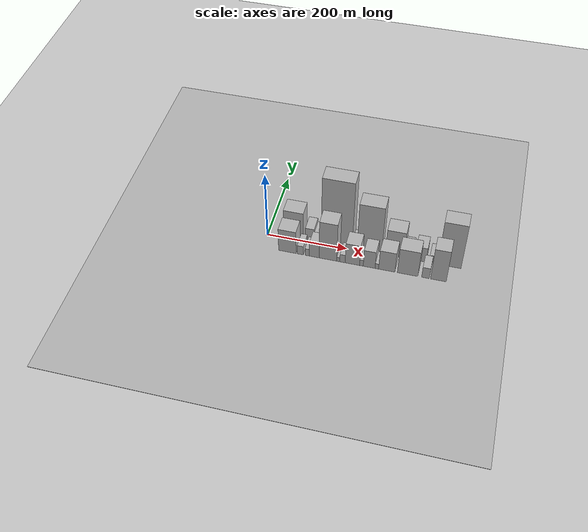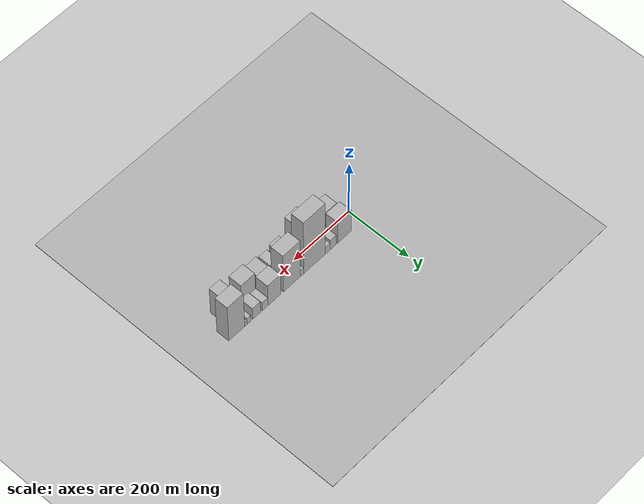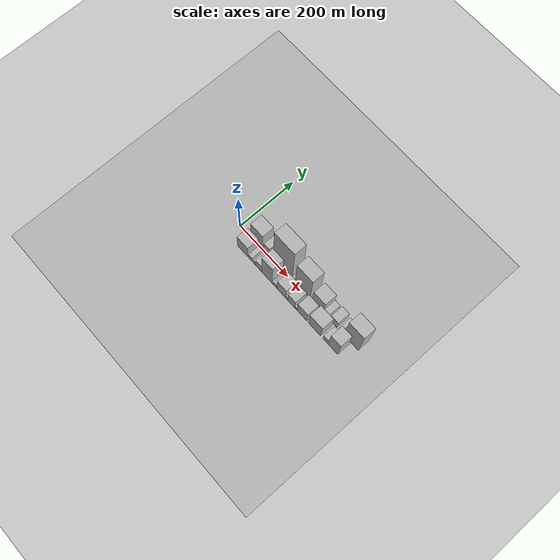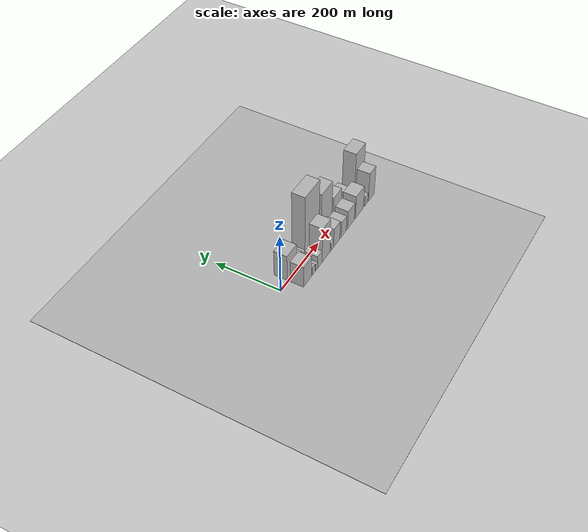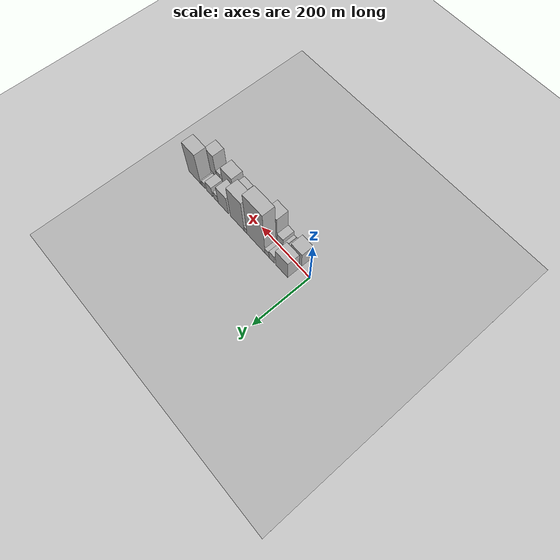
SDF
<?xml version="1.0" encoding="utf-8"?>

<sdf version="1.6">

   <world name="default">

      <gui fullscreen="0">

         <camera name="user_camera">

            <pose>-15 0 4.57585 0 0 0</pose>

            <view_controller>orbit</view_controller>

         </camera>

      </gui>

      <scene>

         <sky>

           <clouds>

             <speed>12</speed>

           </clouds>

         </sky>

         <ambient>0.4 0.4 0.4 1</ambient>

         <background>0.7 0.7 0.7 1</background>

         <shadows>1</shadows>

      </scene>

      <gravity>0 0 -9.8066</gravity>

      <magnetic_field>6e-06 2.3e-05 -4.2e-05</magnetic_field>

      <physics default="0" name="default_physics" type="ode">

         <ode>

            <solver>

               <type>quick</type>

               <iters>10</iters>

               <sor>1.0</sor>

               <use_dynamic_moi_rescaling>0</use_dynamic_moi_rescaling>

            </solver>

            <constraints>

               <cfm>0</cfm>

               <erp>0.2</erp>

               <contact_max_correcting_vel>100</contact_max_correcting_vel>

               <contact_surface_layer>0.001</contact_surface_layer>

            </constraints>

         </ode>

         <max_step_size>0.004</max_step_size>

         <real_time_factor>1</real_time_factor>

         <real_time_update_rate>250</real_time_update_rate>

      </physics>

      <light name="sun" type="directional">

         <cast_shadows>1</cast_shadows>

         <pose>0 0 10 0 0 0</pose>

         <diffuse>0.8 0.8 0.8 1</diffuse>

         <specular>0.2 0.2 0.2 1</specular>

         <attenuation>

            <range>1000</range>

            <constant>0.9</constant>

            <linear>0.01</linear>

            <quadratic>0.001</quadratic>

         </attenuation>

         <direction>-0.5 0.1 -0.9</direction>

      </light>

      <include>

         <name>ground_plane_1</name>

         <uri>model://HANNAS_ground_plane</uri>

         <pose>0 0 0  0 0 0</pose>

      </include>

      <include>

         <name>ground_plane_2</name>

         <uri>model://HANNAS_ground_plane</uri>

         <pose>100 0 0  0 0 0</pose>

      </include>

      <model name="building_1">

         <static>1</static>

         <pose frame="">64.7713 24.5000 0 0.000000 0.000000 1.570796</pose>

         <link name="link">

            <pose frame="">0 0 45.00 0 0 0</pose>

            <collision name="collision">

               <geometry>

                  <box>

                     <size>40.0000 49.5426 90.0000</size>

                  </box>

               </geometry>

               <max_contacts>10</max_contacts>

               <surface>

                  <contact>

                     <ode/>

                  </contact>

                  <bounce/>

                  <friction>

                     <torsional>

                        <ode/>

                     </torsional>

                     <ode/>

                  </friction>

               </surface>

            </collision>

            <visual name="visual">

               <cast_shadows>0</cast_shadows>

               <geometry>

                  <box>

                     <size>40.0000 49.5426 90.0000</size>

                  </box>

               </geometry>

               <material>

                  <script>

                     <uri>model://HANNAS_wall/materials/scripts</uri>

                     <uri>model://HANNAS_wall/materials/textures</uri>

                     <name>vrc/HANNAS_wall</name>

                  </script>

               </material>

            </visual>

            <self_collide>0</self_collide>

            <enable_wind>0</enable_wind>

            <kinematic>0</kinematic>

         </link>

      </model>

      <model name="building_2">

         <static>1</static>

         <pose frame="">105.6642 24.5000 0 0.000000 0.000000 1.570796</pose>

         <link name="link">

            <pose frame="">0 0 21.00 0 0 0</pose>

            <collision name="collision">

               <geometry>

                  <box>

                     <size>40.0000 22.2433 42.0000</size>

                  </box>

               </geometry>

               <max_contacts>10</max_contacts>

               <surface>

                  <contact>

                     <ode/>

                  </contact>

                  <bounce/>

                  <friction>

                     <torsional>

                        <ode/>

                     </torsional>

                     <ode/>

                  </friction>

               </surface>

            </collision>

            <visual name="visual">

               <cast_shadows>0</cast_shadows>

               <geometry>

                  <box>

                     <size>40.0000 22.2433 42.0000</size>

                  </box>

               </geometry>

               <material>

                  <script>

                     <uri>model://HANNAS_wall/materials/scripts</uri>

                     <uri>model://HANNAS_wall/materials/textures</uri>

                     <name>vrc/HANNAS_wall</name>

                  </script>

               </material>

            </visual>

            <self_collide>0</self_collide>

            <enable_wind>0</enable_wind>

            <kinematic>0</kinematic>

         </link>

      </model>

      <model name="building_3">

         <static>1</static>

         <pose frame="">125.5210 24.5000 0 0.000000 0.000000 1.570796</pose>

         <link name="link">

            <pose frame="">0 0 15.00 0 0 0</pose>

            <collision name="collision">

               <geometry>

                  <box>

                     <size>40.0000 17.4704 30.0000</size>

                  </box>

               </geometry>

               <max_contacts>10</max_contacts>

               <surface>

                  <contact>

                     <ode/>

                  </contact>

                  <bounce/>

                  <friction>

                     <torsional>

                        <ode/>

                     </torsional>

                     <ode/>

                  </friction>

               </surface>

            </collision>

            <visual name="visual">

               <cast_shadows>0</cast_shadows>

               <geometry>

                  <box>

                     <size>40.0000 17.4704 30.0000</size>

                  </box>

               </geometry>

               <material>

                  <script>

                     <uri>model://HANNAS_wall/materials/scripts</uri>

                     <uri>model://HANNAS_wall/materials/textures</uri>

                     <name>vrc/HANNAS_wall</name>

                  </script>

               </material>

            </visual>

            <self_collide>0</self_collide>

            <enable_wind>0</enable_wind>

            <kinematic>0</kinematic>

         </link>

      </model>

      <model name="building_4">

         <static>1</static>

         <pose frame="">173.0121 24.5000 0 0.000000 0.000000 1.570796</pose>

         <link name="link">

            <pose frame="">0 0 109.50 0 0 0</pose>

            <collision name="collision">

               <geometry>

                  <box>

                     <size>40.0000 77.5117 219.0000</size>

                  </box>

               </geometry>

               <max_contacts>10</max_contacts>

               <surface>

                  <contact>

                     <ode/>

                  </contact>

                  <bounce/>

                  <friction>

                     <torsional>

                        <ode/>

                     </torsional>

                     <ode/>

                  </friction>

               </surface>

            </collision>

            <visual name="visual">

               <cast_shadows>0</cast_shadows>

               <geometry>

                  <box>

                     <size>40.0000 77.5117 219.0000</size>

                  </box>

               </geometry>

               <material>

                  <script>

                     <uri>model://HANNAS_wall/materials/scripts</uri>

                     <uri>model://HANNAS_wall/materials/textures</uri>

                     <name>vrc/HANNAS_wall</name>

                  </script>

               </material>

            </visual>

            <self_collide>0</self_collide>

            <enable_wind>0</enable_wind>

            <kinematic>0</kinematic>

         </link>

      </model>

      <model name="building_5">

         <static>1</static>

         <pose frame="">217.7400 24.5000 0 0.000000 0.000000 1.570796</pose>

         <link name="link">

            <pose frame="">0 0 13.50 0 0 0</pose>

            <collision name="collision">

               <geometry>

                  <box>

                     <size>40.0000 11.9441 27.0000</size>

                  </box>

               </geometry>

               <max_contacts>10</max_contacts>

               <surface>

                  <contact>

                     <ode/>

                  </contact>

                  <bounce/>

                  <friction>

                     <torsional>

                        <ode/>

                     </torsional>

                     <ode/>

                  </friction>

               </surface>

            </collision>

            <visual name="visual">

               <cast_shadows>0</cast_shadows>

               <geometry>

                  <box>

                     <size>40.0000 11.9441 27.0000</size>

                  </box>

               </geometry>

               <material>

                  <script>

                     <uri>model://HANNAS_wall/materials/scripts</uri>

                     <uri>model://HANNAS_wall/materials/textures</uri>

                     <name>vrc/HANNAS_wall</name>

                  </script>

               </material>

            </visual>

            <self_collide>0</self_collide>

            <enable_wind>0</enable_wind>

            <kinematic>0</kinematic>

         </link>

      </model>

      <model name="building_6">

         <static>1</static>

         <pose frame="">254.0440 24.5000 0 0.000000 0.000000 1.570796</pose>

         <link name="link">

            <pose frame="">0 0 78.00 0 0 0</pose>

            <collision name="collision">

               <geometry>

                  <box>

                     <size>40.0000 60.6638 156.0000</size>

                  </box>

               </geometry>

               <max_contacts>10</max_contacts>

               <surface>

                  <contact>

                     <ode/>

                  </contact>

                  <bounce/>

                  <friction>

                     <torsional>

                        <ode/>

                     </torsional>

                     <ode/>

                  </friction>

               </surface>

            </collision>

            <visual name="visual">

               <cast_shadows>0</cast_shadows>

               <geometry>

                  <box>

                     <size>40.0000 60.6638 156.0000</size>

                  </box>

               </geometry>

               <material>

                  <script>

                     <uri>model://HANNAS_wall/materials/scripts</uri>

                     <uri>model://HANNAS_wall/materials/textures</uri>

                     <name>vrc/HANNAS_wall</name>

                  </script>

               </material>

            </visual>

            <self_collide>0</self_collide>

            <enable_wind>0</enable_wind>

            <kinematic>0</kinematic>

         </link>

      </model>

      <model name="building_7">

         <static>1</static>

         <pose frame="">316.2565 24.5000 0 0.000000 0.000000 1.570796</pose>

         <link name="link">

            <pose frame="">0 0 43.50 0 0 0</pose>

            <collision name="collision">

               <geometry>

                  <box>

                     <size>40.0000 45.7612 87.0000</size>

                  </box>

               </geometry>

               <max_contacts>10</max_contacts>

               <surface>

                  <contact>

                     <ode/>

                  </contact>

                  <bounce/>

                  <friction>

                     <torsional>

                        <ode/>

                     </torsional>

                     <ode/>

                  </friction>

               </surface>

            </collision>

            <visual name="visual">

               <cast_shadows>0</cast_shadows>

               <geometry>

                  <box>

                     <size>40.0000 45.7612 87.0000</size>

                  </box>

               </geometry>

               <material>

                  <script>

                     <uri>model://HANNAS_wall/materials/scripts</uri>

                     <uri>model://HANNAS_wall/materials/textures</uri>

                     <name>vrc/HANNAS_wall</name>

                  </script>

               </material>

            </visual>

            <self_collide>0</self_collide>

            <enable_wind>0</enable_wind>

            <kinematic>0</kinematic>

         </link>

      </model>

      <model name="building_8">

         <static>1</static>

         <pose frame="">349.2459 24.5000 0 0.000000 0.000000 1.570796</pose>

         <link name="link">

            <pose frame="">0 0 18.00 0 0 0</pose>

            <collision name="collision">

               <geometry>

                  <box>

                     <size>40.0000 20.2176 36.0000</size>

                  </box>

               </geometry>

               <max_contacts>10</max_contacts>

               <surface>

                  <contact>

                     <ode/>

                  </contact>

                  <bounce/>

                  <friction>

                     <torsional>

                        <ode/>

                     </torsional>

                     <ode/>

                  </friction>

               </surface>

            </collision>

            <visual name="visual">

               <cast_shadows>0</cast_shadows>

               <geometry>

                  <box>

                     <size>40.0000 20.2176 36.0000</size>

                  </box>

               </geometry>

               <material>

                  <script>

                     <uri>model://HANNAS_wall/materials/scripts</uri>

                     <uri>model://HANNAS_wall/materials/textures</uri>

                     <name>vrc/HANNAS_wall</name>

                  </script>

               </material>

            </visual>

            <self_collide>0</self_collide>

            <enable_wind>0</enable_wind>

            <kinematic>0</kinematic>

         </link>

      </model>

      <model name="building_9">

         <static>1</static>

         <pose frame="">379.1778 24.5000 0 0.000000 0.000000 1.570796</pose>

         <link name="link">

            <pose frame="">0 0 24.00 0 0 0</pose>

            <collision name="collision">

               <geometry>

                  <box>

                     <size>40.0000 27.6463 48.0000</size>

                  </box>

               </geometry>

               <max_contacts>10</max_contacts>

               <surface>

                  <contact>

                     <ode/>

                  </contact>

                  <bounce/>

                  <friction>

                     <torsional>

                        <ode/>

                     </torsional>

                     <ode/>

                  </friction>

               </surface>

            </collision>

            <visual name="visual">

               <cast_shadows>0</cast_shadows>

               <geometry>

                  <box>

                     <size>40.0000 27.6463 48.0000</size>

                  </box>

               </geometry>

               <material>

                  <script>

                     <uri>model://HANNAS_wall/materials/scripts</uri>

                     <uri>model://HANNAS_wall/materials/textures</uri>

                     <name>vrc/HANNAS_wall</name>

                  </script>

               </material>

            </visual>

            <self_collide>0</self_collide>

            <enable_wind>0</enable_wind>

            <kinematic>0</kinematic>

         </link>

      </model>

      <model name="building_10">

         <static>1</static>

         <pose frame="">406.3961 24.5000 0 0.000000 0.000000 1.570796</pose>

         <link name="link">

            <pose frame="">0 0 13.50 0 0 0</pose>

            <collision name="collision">

               <geometry>

                  <box>

                     <size>40.0000 12.7904 27.0000</size>

                  </box>

               </geometry>

               <max_contacts>10</max_contacts>

               <surface>

                  <contact>

                     <ode/>

                  </contact>

                  <bounce/>

                  <friction>

                     <torsional>

                        <ode/>

                     </torsional>

                     <ode/>

                  </friction>

               </surface>

            </collision>

            <visual name="visual">

               <cast_shadows>0</cast_shadows>

               <geometry>

                  <box>

                     <size>40.0000 12.7904 27.0000</size>

                  </box>

               </geometry>

               <material>

                  <script>

                     <uri>model://HANNAS_wall/materials/scripts</uri>

                     <uri>model://HANNAS_wall/materials/textures</uri>

                     <name>vrc/HANNAS_wall</name>

                  </script>

               </material>

            </visual>

            <self_collide>0</self_collide>

            <enable_wind>0</enable_wind>

            <kinematic>0</kinematic>

         </link>

      </model>

      <model name="building_11">

         <static>1</static>

         <pose frame="">416.9157 24.5000 0 0.000000 0.000000 1.570796</pose>

         <link name="link">

            <pose frame="">0 0 9.00 0 0 0</pose>

            <collision name="collision">

               <geometry>

                  <box>

                     <size>40.0000 8.2487 18.0000</size>

                  </box>

               </geometry>

               <max_contacts>10</max_contacts>

               <surface>

                  <contact>

                     <ode/>

                  </contact>

                  <bounce/>

                  <friction>

                     <torsional>

                        <ode/>

                     </torsional>

                     <ode/>

                  </friction>

               </surface>

            </collision>

            <visual name="visual">

               <cast_shadows>0</cast_shadows>

               <geometry>

                  <box>

                     <size>40.0000 8.2487 18.0000</size>

                  </box>

               </geometry>

               <material>

                  <script>

                     <uri>model://HANNAS_wall/materials/scripts</uri>

                     <uri>model://HANNAS_wall/materials/textures</uri>

                     <name>vrc/HANNAS_wall</name>

                  </script>

               </material>

            </visual>

            <self_collide>0</self_collide>

            <enable_wind>0</enable_wind>

            <kinematic>0</kinematic>

         </link>

      </model>

      <model name="building_12">

         <static>1</static>

         <pose frame="">448.8330 24.5000 0 0.000000 0.000000 1.570796</pose>

         <link name="link">

            <pose frame="">0 0 73.50 0 0 0</pose>

            <collision name="collision">

               <geometry>

                  <box>

                     <size>40.0000 55.5858 147.0000</size>

                  </box>

               </geometry>

               <max_contacts>10</max_contacts>

               <surface>

                  <contact>

                     <ode/>

                  </contact>

                  <bounce/>

                  <friction>

                     <torsional>

                        <ode/>

                     </torsional>

                     <ode/>

                  </friction>

               </surface>

            </collision>

            <visual name="visual">

               <cast_shadows>0</cast_shadows>

               <geometry>

                  <box>

                     <size>40.0000 55.5858 147.0000</size>

                  </box>

               </geometry>

               <material>

                  <script>

                     <uri>model://HANNAS_wall/materials/scripts</uri>

                     <uri>model://HANNAS_wall/materials/textures</uri>

                     <name>vrc/HANNAS_wall</name>

                  </script>

               </material>

            </visual>

            <self_collide>0</self_collide>

            <enable_wind>0</enable_wind>

            <kinematic>0</kinematic>

         </link>

      </model>

      <model name="building_13">

         <static>1</static>

         <pose frame="">61.8248 -24.5000 0 0.000000 0.000000 1.570796</pose>

         <link name="link">

            <pose frame="">0 0 37.50 0 0 0</pose>

            <collision name="collision">

               <geometry>

                  <box>

                     <size>40.0000 43.6497 75.0000</size>

                  </box>

               </geometry>

               <max_contacts>10</max_contacts>

               <surface>

                  <contact>

                     <ode/>

                  </contact>

                  <bounce/>

                  <friction>

                     <torsional>

                        <ode/>

                     </torsional>

                     <ode/>

                  </friction>

               </surface>

            </collision>

            <visual name="visual">

               <cast_shadows>0</cast_shadows>

               <geometry>

                  <box>

                     <size>40.0000 43.6497 75.0000</size>

                  </box>

               </geometry>

               <material>

                  <script>

                     <uri>model://HANNAS_wall/materials/scripts</uri>

                     <uri>model://HANNAS_wall/materials/textures</uri>

                     <name>vrc/HANNAS_wall</name>

                  </script>

               </material>

            </visual>

            <self_collide>0</self_collide>

            <enable_wind>0</enable_wind>

            <kinematic>0</kinematic>

         </link>

      </model>

      <model name="building_14">

         <static>1</static>

         <pose frame="">94.2804 -24.5000 0 0.000000 0.000000 1.570796</pose>

         <link name="link">

            <pose frame="">0 0 15.00 0 0 0</pose>

            <collision name="collision">

               <geometry>

                  <box>

                     <size>40.0000 15.2615 30.0000</size>

                  </box>

               </geometry>

               <max_contacts>10</max_contacts>

               <surface>

                  <contact>

                     <ode/>

                  </contact>

                  <bounce/>

                  <friction>

                     <torsional>

                        <ode/>

                     </torsional>

                     <ode/>

                  </friction>

               </surface>

            </collision>

            <visual name="visual">

               <cast_shadows>0</cast_shadows>

               <geometry>

                  <box>

                     <size>40.0000 15.2615 30.0000</size>

                  </box>

               </geometry>

               <material>

                  <script>

                     <uri>model://HANNAS_wall/materials/scripts</uri>

                     <uri>model://HANNAS_wall/materials/textures</uri>

                     <name>vrc/HANNAS_wall</name>

                  </script>

               </material>

            </visual>

            <self_collide>0</self_collide>

            <enable_wind>0</enable_wind>

            <kinematic>0</kinematic>

         </link>

      </model>

      <model name="building_15">

         <static>1</static>

         <pose frame="">110.9795 -24.5000 0 0.000000 0.000000 1.570796</pose>

         <link name="link">

            <pose frame="">0 0 12.00 0 0 0</pose>

            <collision name="collision">

               <geometry>

                  <box>

                     <size>40.0000 10.1367 24.0000</size>

                  </box>

               </geometry>

               <max_contacts>10</max_contacts>

               <surface>

                  <contact>

                     <ode/>

                  </contact>

                  <bounce/>

                  <friction>

                     <torsional>

                        <ode/>

                     </torsional>

                     <ode/>

                  </friction>

               </surface>

            </collision>

            <visual name="visual">

               <cast_shadows>0</cast_shadows>

               <geometry>

                  <box>

                     <size>40.0000 10.1367 24.0000</size>

                  </box>

               </geometry>

               <material>

                  <script>

                     <uri>model://HANNAS_wall/materials/scripts</uri>

                     <uri>model://HANNAS_wall/materials/textures</uri>

                     <name>vrc/HANNAS_wall</name>

                  </script>

               </material>

            </visual>

            <self_collide>0</self_collide>

            <enable_wind>0</enable_wind>

            <kinematic>0</kinematic>

         </link>

      </model>

      <model name="building_16">

         <static>1</static>

         <pose frame="">128.3566 -24.5000 0 0.000000 0.000000 1.570796</pose>

         <link name="link">

            <pose frame="">0 0 22.50 0 0 0</pose>

            <collision name="collision">

               <geometry>

                  <box>

                     <size>40.0000 24.6174 45.0000</size>

                  </box>

               </geometry>

               <max_contacts>10</max_contacts>

               <surface>

                  <contact>

                     <ode/>

                  </contact>

                  <bounce/>

                  <friction>

                     <torsional>

                        <ode/>

                     </torsional>

                     <ode/>

                  </friction>

               </surface>

            </collision>

            <visual name="visual">

               <cast_shadows>0</cast_shadows>

               <geometry>

                  <box>

                     <size>40.0000 24.6174 45.0000</size>

                  </box>

               </geometry>

               <material>

                  <script>

                     <uri>model://HANNAS_wall/materials/scripts</uri>

                     <uri>model://HANNAS_wall/materials/textures</uri>

                     <name>vrc/HANNAS_wall</name>

                  </script>

               </material>

            </visual>

            <self_collide>0</self_collide>

            <enable_wind>0</enable_wind>

            <kinematic>0</kinematic>

         </link>

      </model>

      <model name="building_17">

         <static>1</static>

         <pose frame="">162.4548 -24.5000 0 0.000000 0.000000 1.570796</pose>

         <link name="link">

            <pose frame="">0 0 63.00 0 0 0</pose>

            <collision name="collision">

               <geometry>

                  <box>

                     <size>40.0000 43.5791 126.0000</size>

                  </box>

               </geometry>

               <max_contacts>10</max_contacts>

               <surface>

                  <contact>

                     <ode/>

                  </contact>

                  <bounce/>

                  <friction>

                     <torsional>

                        <ode/>

                     </torsional>

                     <ode/>

                  </friction>

               </surface>

            </collision>

            <visual name="visual">

               <cast_shadows>0</cast_shadows>

               <geometry>

                  <box>

                     <size>40.0000 43.5791 126.0000</size>

                  </box>

               </geometry>

               <material>

                  <script>

                     <uri>model://HANNAS_wall/materials/scripts</uri>

                     <uri>model://HANNAS_wall/materials/textures</uri>

                     <name>vrc/HANNAS_wall</name>

                  </script>

               </material>

            </visual>

            <self_collide>0</self_collide>

            <enable_wind>0</enable_wind>

            <kinematic>0</kinematic>

         </link>

      </model>

      <model name="building_18">

         <static>1</static>

         <pose frame="">187.9737 -24.5000 0 0.000000 0.000000 1.570796</pose>

         <link name="link">

            <pose frame="">0 0 7.50 0 0 0</pose>

            <collision name="collision">

               <geometry>

                  <box>

                     <size>40.0000 7.4587 15.0000</size>

                  </box>

               </geometry>

               <max_contacts>10</max_contacts>

               <surface>

                  <contact>

                     <ode/>

                  </contact>

                  <bounce/>

                  <friction>

                     <torsional>

                        <ode/>

                     </torsional>

                     <ode/>

                  </friction>

               </surface>

            </collision>

            <visual name="visual">

               <cast_shadows>0</cast_shadows>

               <geometry>

                  <box>

                     <size>40.0000 7.4587 15.0000</size>

                  </box>

               </geometry>

               <material>

                  <script>

                     <uri>model://HANNAS_wall/materials/scripts</uri>

                     <uri>model://HANNAS_wall/materials/textures</uri>

                     <name>vrc/HANNAS_wall</name>

                  </script>

               </material>

            </visual>

            <self_collide>0</self_collide>

            <enable_wind>0</enable_wind>

            <kinematic>0</kinematic>

         </link>

      </model>

      <model name="building_19">

         <static>1</static>

         <pose frame="">198.3030 -24.5000 0 0.000000 0.000000 1.570796</pose>

         <link name="link">

            <pose frame="">0 0 13.50 0 0 0</pose>

            <collision name="collision">

               <geometry>

                  <box>

                     <size>40.0000 13.2000 27.0000</size>

                  </box>

               </geometry>

               <max_contacts>10</max_contacts>

               <surface>

                  <contact>

                     <ode/>

                  </contact>

                  <bounce/>

                  <friction>

                     <torsional>

                        <ode/>

                     </torsional>

                     <ode/>

                  </friction>

               </surface>

            </collision>

            <visual name="visual">

               <cast_shadows>0</cast_shadows>

               <geometry>

                  <box>

                     <size>40.0000 13.2000 27.0000</size>

                  </box>

               </geometry>

               <material>

                  <script>

                     <uri>model://HANNAS_wall/materials/scripts</uri>

                     <uri>model://HANNAS_wall/materials/textures</uri>

                     <name>vrc/HANNAS_wall</name>

                  </script>

               </material>

            </visual>

            <self_collide>0</self_collide>

            <enable_wind>0</enable_wind>

            <kinematic>0</kinematic>

         </link>

      </model>

      <model name="building_20">

         <static>1</static>

         <pose frame="">222.6523 -24.5000 0 0.000000 0.000000 1.570796</pose>

         <link name="link">

            <pose frame="">0 0 34.50 0 0 0</pose>

            <collision name="collision">

               <geometry>

                  <box>

                     <size>40.0000 35.4986 69.0000</size>

                  </box>

               </geometry>

               <max_contacts>10</max_contacts>

               <surface>

                  <contact>

                     <ode/>

                  </contact>

                  <bounce/>

                  <friction>

                     <torsional>

                        <ode/>

                     </torsional>

                     <ode/>

                  </friction>

               </surface>

            </collision>

            <visual name="visual">

               <cast_shadows>0</cast_shadows>

               <geometry>

                  <box>

                     <size>40.0000 35.4986 69.0000</size>

                  </box>

               </geometry>

               <material>

                  <script>

                     <uri>model://HANNAS_wall/materials/scripts</uri>

                     <uri>model://HANNAS_wall/materials/textures</uri>

                     <name>vrc/HANNAS_wall</name>

                  </script>

               </material>

            </visual>

            <self_collide>0</self_collide>

            <enable_wind>0</enable_wind>

            <kinematic>0</kinematic>

         </link>

      </model>

      <model name="building_21">

         <static>1</static>

         <pose frame="">244.7840 -24.5000 0 0.000000 0.000000 1.570796</pose>

         <link name="link">

            <pose frame="">0 0 10.50 0 0 0</pose>

            <collision name="collision">

               <geometry>

                  <box>

                     <size>40.0000 8.7647 21.0000</size>

                  </box>

               </geometry>

               <max_contacts>10</max_contacts>

               <surface>

                  <contact>

                     <ode/>

                  </contact>

                  <bounce/>

                  <friction>

                     <torsional>

                        <ode/>

                     </torsional>

                     <ode/>

                  </friction>

               </surface>

            </collision>

            <visual name="visual">

               <cast_shadows>0</cast_shadows>

               <geometry>

                  <box>

                     <size>40.0000 8.7647 21.0000</size>

                  </box>

               </geometry>

               <material>

                  <script>

                     <uri>model://HANNAS_wall/materials/scripts</uri>

                     <uri>model://HANNAS_wall/materials/textures</uri>

                     <name>vrc/HANNAS_wall</name>

                  </script>

               </material>

            </visual>

            <self_collide>0</self_collide>

            <enable_wind>0</enable_wind>

            <kinematic>0</kinematic>

         </link>

      </model>

      <model name="building_22">

         <static>1</static>

         <pose frame="">263.5239 -24.5000 0 0.000000 0.000000 1.570796</pose>

         <link name="link">

            <pose frame="">0 0 28.50 0 0 0</pose>

            <collision name="collision">

               <geometry>

                  <box>

                     <size>40.0000 28.7151 57.0000</size>

                  </box>

               </geometry>

               <max_contacts>10</max_contacts>

               <surface>

                  <contact>

                     <ode/>

                  </contact>

                  <bounce/>

                  <friction>

                     <torsional>

                        <ode/>

                     </torsional>

                     <ode/>

                  </friction>

               </surface>

            </collision>

            <visual name="visual">

               <cast_shadows>0</cast_shadows>

               <geometry>

                  <box>

                     <size>40.0000 28.7151 57.0000</size>

                  </box>

               </geometry>

               <material>

                  <script>

                     <uri>model://HANNAS_wall/materials/scripts</uri>

                     <uri>model://HANNAS_wall/materials/textures</uri>

                     <name>vrc/HANNAS_wall</name>

                  </script>

               </material>

            </visual>

            <self_collide>0</self_collide>

            <enable_wind>0</enable_wind>

            <kinematic>0</kinematic>

         </link>

      </model>

      <model name="building_23">

         <static>1</static>

         <pose frame="">282.1870 -24.5000 0 0.000000 0.000000 1.570796</pose>

         <link name="link">

            <pose frame="">0 0 9.00 0 0 0</pose>

            <collision name="collision">

               <geometry>

                  <box>

                     <size>40.0000 8.6112 18.0000</size>

                  </box>

               </geometry>

               <max_contacts>10</max_contacts>

               <surface>

                  <contact>

                     <ode/>

                  </contact>

                  <bounce/>

                  <friction>

                     <torsional>

                        <ode/>

                     </torsional>

                     <ode/>

                  </friction>

               </surface>

            </collision>

            <visual name="visual">

               <cast_shadows>0</cast_shadows>

               <geometry>

                  <box>

                     <size>40.0000 8.6112 18.0000</size>

                  </box>

               </geometry>

               <material>

                  <script>

                     <uri>model://HANNAS_wall/materials/scripts</uri>

                     <uri>model://HANNAS_wall/materials/textures</uri>

                     <name>vrc/HANNAS_wall</name>

                  </script>

               </material>

            </visual>

            <self_collide>0</self_collide>

            <enable_wind>0</enable_wind>

            <kinematic>0</kinematic>

         </link>

      </model>

      <model name="building_24">

         <static>1</static>

         <pose frame="">306.0990 -24.5000 0 0.000000 0.000000 1.570796</pose>

         <link name="link">

            <pose frame="">0 0 33.00 0 0 0</pose>

            <collision name="collision">

               <geometry>

                  <box>

                     <size>40.0000 39.2129 66.0000</size>

                  </box>

               </geometry>

               <max_contacts>10</max_contacts>

               <surface>

                  <contact>

                     <ode/>

                  </contact>

                  <bounce/>

                  <friction>

                     <torsional>

                        <ode/>

                     </torsional>

                     <ode/>

                  </friction>

               </surface>

            </collision>

            <visual name="visual">

               <cast_shadows>0</cast_shadows>

               <geometry>

                  <box>

                     <size>40.0000 39.2129 66.0000</size>

                  </box>

               </geometry>

               <material>

                  <script>

                     <uri>model://HANNAS_wall/materials/scripts</uri>

                     <uri>model://HANNAS_wall/materials/textures</uri>

                     <name>vrc/HANNAS_wall</name>

                  </script>

               </material>

            </visual>

            <self_collide>0</self_collide>

            <enable_wind>0</enable_wind>

            <kinematic>0</kinematic>

         </link>

      </model>

      <model name="building_25">

         <static>1</static>

         <pose frame="">356.2452 -24.5000 0 0.000000 0.000000 1.570796</pose>

         <link name="link">

            <pose frame="">0 0 42.00 0 0 0</pose>

            <collision name="collision">

               <geometry>

                  <box>

                     <size>40.0000 49.0793 84.0000</size>

                  </box>

               </geometry>

               <max_contacts>10</max_contacts>

               <surface>

                  <contact>

                     <ode/>

                  </contact>

                  <bounce/>

                  <friction>

                     <torsional>

                        <ode/>

                     </torsional>

                     <ode/>

                  </friction>

               </surface>

            </collision>

            <visual name="visual">

               <cast_shadows>0</cast_shadows>

               <geometry>

                  <box>

                     <size>40.0000 49.0793 84.0000</size>

                  </box>

               </geometry>

               <material>

                  <script>

                     <uri>model://HANNAS_wall/materials/scripts</uri>

                     <uri>model://HANNAS_wall/materials/textures</uri>

                     <name>vrc/HANNAS_wall</name>

                  </script>

               </material>

            </visual>

            <self_collide>0</self_collide>

            <enable_wind>0</enable_wind>

            <kinematic>0</kinematic>

         </link>

      </model>

      <model name="building_26">

         <static>1</static>

         <pose frame="">398.9200 -24.5000 0 0.000000 0.000000 1.570796</pose>

         <link name="link">

            <pose frame="">0 0 18.00 0 0 0</pose>

            <collision name="collision">

               <geometry>

                  <box>

                     <size>40.0000 18.2703 36.0000</size>

                  </box>

               </geometry>

               <max_contacts>10</max_contacts>

               <surface>

                  <contact>

                     <ode/>

                  </contact>

                  <bounce/>

                  <friction>

                     <torsional>

                        <ode/>

                     </torsional>

                     <ode/>

                  </friction>

               </surface>

            </collision>

            <visual name="visual">

               <cast_shadows>0</cast_shadows>

               <geometry>

                  <box>

                     <size>40.0000 18.2703 36.0000</size>

                  </box>

               </geometry>

               <material>

                  <script>

                     <uri>model://HANNAS_wall/materials/scripts</uri>

                     <uri>model://HANNAS_wall/materials/textures</uri>

                     <name>vrc/HANNAS_wall</name>

                  </script>

               </material>

            </visual>

            <self_collide>0</self_collide>

            <enable_wind>0</enable_wind>

            <kinematic>0</kinematic>

         </link>

      </model>

      <model name="building_27">

         <static>1</static>

         <pose frame="">429.6036 -24.5000 0 0.000000 0.000000 1.570796</pose>

         <link name="link">

            <pose frame="">0 0 52.50 0 0 0</pose>

            <collision name="collision">

               <geometry>

                  <box>

                     <size>40.0000 37.0968 105.0000</size>

                  </box>

               </geometry>

               <max_contacts>10</max_contacts>

               <surface>

                  <contact>

                     <ode/>

                  </contact>

                  <bounce/>

                  <friction>

                     <torsional>

                        <ode/>

                     </torsional>

                     <ode/>

                  </friction>

               </surface>

            </collision>

            <visual name="visual">

               <cast_shadows>0</cast_shadows>

               <geometry>

                  <box>

                     <size>40.0000 37.0968 105.0000</size>

                  </box>

               </geometry>

               <material>

                  <script>

                     <uri>model://HANNAS_wall/materials/scripts</uri>

                     <uri>model://HANNAS_wall/materials/textures</uri>

                     <name>vrc/HANNAS_wall</name>

                  </script>

               </material>

            </visual>

            <self_collide>0</self_collide>

            <enable_wind>0</enable_wind>

            <kinematic>0</kinematic>

         </link>

      </model>

   </world>

</sdf>

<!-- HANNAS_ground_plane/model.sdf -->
<sdf version="1.4">
<model name="HANNAS_ground_plane">
  <static>true</static>
    <link name="link">
      <collision name="collision">
        <geometry>
          <plane>
            <normal>0 0 1</normal>
            <size>1000 1000</size>
          </plane>
        </geometry>
        <surface>
          <friction>
            <ode>
              <mu>100</mu>
              <mu2>50</mu2>
            </ode>
          </friction>
        </surface>
      </collision>
      <visual name="visual">
        <cast_shadows>false</cast_shadows>
        <geometry>
          <plane>
            <normal>0 0 1</normal>
            <size>1000 1000</size>
          </plane>
        </geometry>
        <material>
          <script>
            <uri>model://HANNAS_ground_plane/materials/scripts/HANNAS_ground_plane.material</uri>
	    <uri>model://HANNAS_ground_plane/materials/textures</uri>
            <name>HANNASGroundPlane/Image</name>
          </script>
        </material>
      </visual>
    </link>
  </model>
</sdf>
